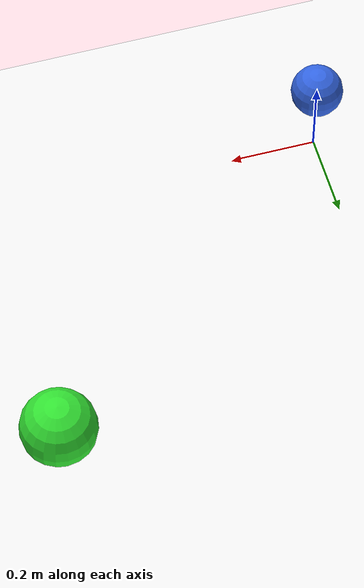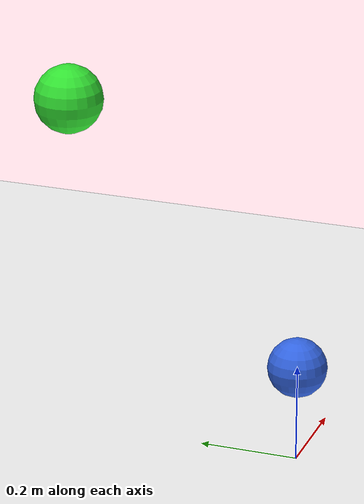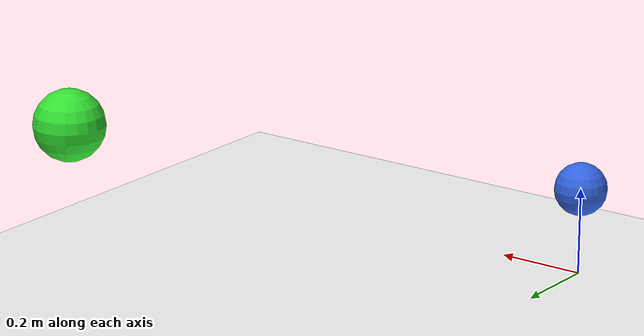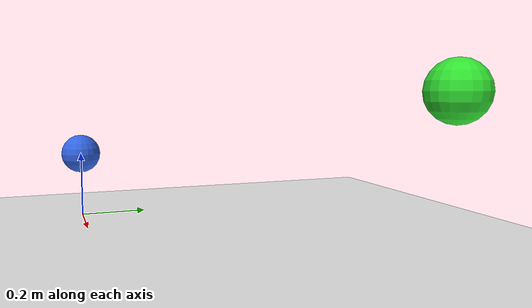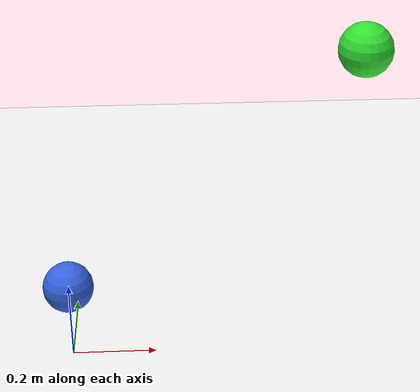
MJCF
<mujoco model="aif_simple_robot_3d">
  <compiler angle="radian" coordinate="local"/>
  <option timestep="0.01" gravity="0 0 0"/>

  <default>
    <geom friction="0.3 0.1 0.1" rgba="0.6 0.6 0.8 1"/>
  </default>

  <worldbody>
    <geom name="ground" type="plane" size="10 10 0.05" rgba="0.95 0.95 0.95 1"/>
    <light name="main" pos="1 1 2" dir="-1 -1 -1"/>
    <site name="target" pos="0.8 0.8 0.4" size="0.08" rgba="0.2 0.9 0.2 0.9"/>
    <body name="agent" pos="0 0 0.2">
      <joint name="slide_x" type="slide" axis="1 0 0" damping="15"/>
      <joint name="slide_y" type="slide" axis="0 1 0" damping="15"/>
      <joint name="slide_z" type="slide" axis="0 0 1" damping="15"/>
      <geom name="agent_body" type="sphere" size="0.06" rgba="0.2 0.4 0.9 1"/>
      <site name="agent_site" pos="0 0 0" size="0.015" rgba="1 0 0 1"/>
    </body>
  </worldbody>

  <actuator>
    <position name="px" joint="slide_x" kp="80" ctrllimited="true" ctrlrange="-10 10"/>
    <position name="py" joint="slide_y" kp="80" ctrllimited="true" ctrlrange="-10 10"/>
    <position name="pz" joint="slide_z" kp="80" ctrllimited="true" ctrlrange="-10 10"/>
  </actuator>
</mujoco>
